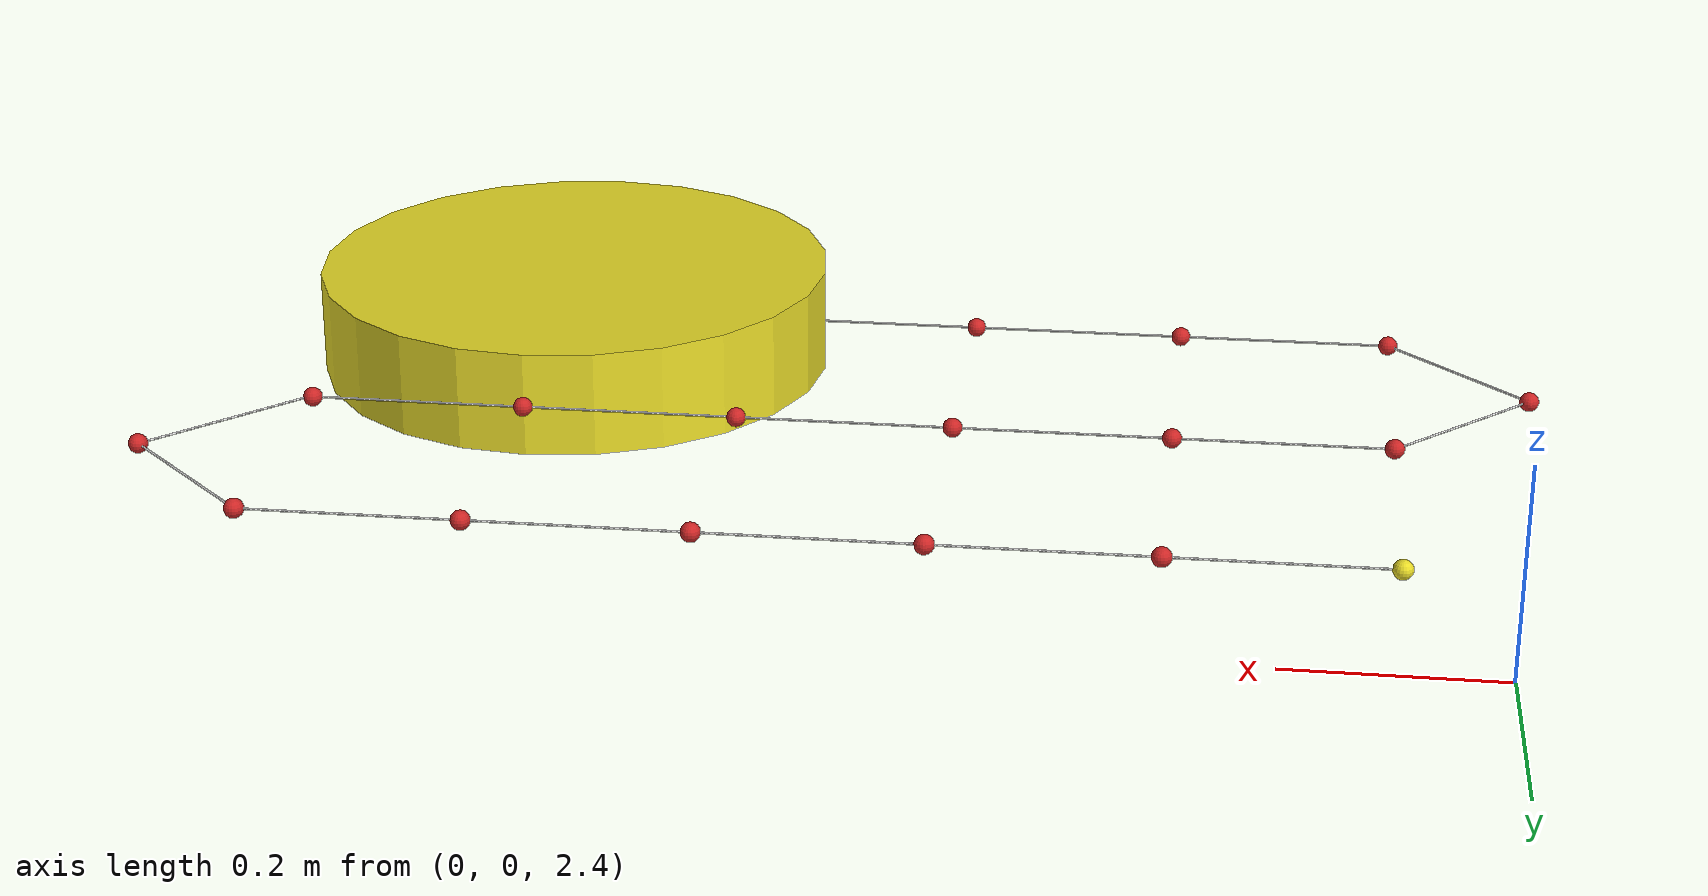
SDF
<?xml version="1.0" ?>
<sdf version="1.5">
  <model name="table_and_tether">
    <link name="tether_connection_link">
      <gravity>false</gravity>
      <pose>0.9 -.508 2.5 0 0 0</pose>
      <visual name="visual">
        <material>
        <script>
          <name>Gazebo/Yellow</name>
          <uri>file://media/materials/scripts/gazebo.material</uri>
        </script>
        </material>
        <geometry>
          <cylinder>
            <radius>0.25</radius>
            <length>0.1</length>
          </cylinder>
        </geometry>
      </visual>
    </link>

    <joint name="joint_table" type="fixed">
      <child>tether_connection_link</child>
      <parent>world</parent>
    </joint>

    <link name="link_00">
      <gravity>true</gravity>
      <pose>0.1 0 2.5 0 0 0</pose>
      <inertial>
        <mass>0.009</mass>
        <pose>0.1 0 0 0 0 0</pose>
        <inertia>
          <ixx>0.01</ixx>
          <ixy>0</ixy>
          <ixz>0</ixz>
          <iyy>0.01</iyy>
          <iyz>0</iyz>
          <izz>0.01</izz>
        </inertia>
      </inertial>
      <visual name="sphere">
        <geometry>
          <sphere>
            <radius>0.009</radius>
          </sphere>
        </geometry>
        <material>
	  <script>
            <name>Gazebo/Yellow</name>
            <uri>file://media/materials/scripts/gazebo.material</uri>
          </script>
        </material>
      </visual>
    </link>
    <link name="link_01">
      <gravity>true</gravity>
      <pose>0.1 0 2.5 0 0 0</pose>
      <inertial>
        <mass>0.009</mass>
        <pose>0.1 0 0 0 0 0</pose>
        <inertia>
          <ixx>0.01</ixx>
          <ixy>0</ixy>
          <ixz>0</ixz>
          <iyy>0.01</iyy>
          <iyz>0</iyz>
          <izz>0.01</izz>
        </inertia>
      </inertial>
      <collision name="collision">
        <pose>0.1 0 0 0 1.570790 0</pose>
        <geometry>
          <cylinder>
            <length>0.2</length>
            <radius>0.001</radius>
          </cylinder>
        </geometry>
        <surface>
          <contact>
            <ode>
              <min_depth>0.00005</min_depth>
            </ode>
          </contact>
          <friction>
            <ode>
              <mu>1.0</mu>
              <mu2>1.0</mu2>
            </ode>
          </friction>
        </surface>
      </collision>
      <visual name="visual">
        <pose>0.1 0 0 0 1.570790 0</pose>
        <geometry>
          <cylinder>
            <length>0.2</length>
            <radius>0.001</radius>
          </cylinder>
        </geometry>
	<material>
	  <script>
            <name>Gazebo/White</name>
            <uri>file://media/materials/scripts/gazebo.material</uri>
          </script>
        </material>
      </visual>
    </link>
    <link name="link_02">
      <gravity>true</gravity>
      <pose>0.3 0 2.5 0 0 0</pose>
      <inertial>
        <mass>0.009</mass>
        <pose>0.1 0 0 0 0 0</pose>
        <inertia>
          <ixx>0.01</ixx>
          <ixy>0</ixy>
          <ixz>0</ixz>
          <iyy>0.01</iyy>
          <iyz>0</iyz>
          <izz>0.01</izz>
        </inertia>
      </inertial>
      <collision name="collision">
        <pose>0.1 0 0 0 1.570790 0</pose>
        <geometry>
          <cylinder>
            <length>0.2</length>
            <radius>0.001</radius>
          </cylinder>
        </geometry>
        <surface>
          <contact>
            <ode>
              <min_depth>0.00005</min_depth>
            </ode>
          </contact>
          <friction>
            <ode>
              <mu>1.0</mu>
              <mu2>1.0</mu2>
            </ode>
          </friction>
        </surface>
      </collision>
      <visual name="visual">
        <pose>0.1 0 0 0 1.570790 0</pose>
        <geometry>
          <cylinder>
            <length>0.2</length>
            <radius>0.001</radius>
          </cylinder>
        </geometry>
	<material>
	  <script>
            <name>Gazebo/White</name>
            <uri>file://media/materials/scripts/gazebo.material</uri>
          </script>
        </material>
      </visual>
      <visual name="sphere">
        <geometry>
          <sphere>
            <radius>0.009</radius>
          </sphere>
        </geometry>
        <material>
	  <script>
            <name>Gazebo/Red</name>
            <uri>file://media/materials/scripts/gazebo.material</uri>
          </script>
        </material>
      </visual>
    </link>
    <link name="link_03">
      <gravity>true</gravity>
      <pose>0.5 0 2.5 0 0 0</pose>
      <inertial>
        <mass>0.009</mass>
        <pose>0.1 0 0 0 0 0</pose>
        <inertia>
          <ixx>0.01</ixx>
          <ixy>0</ixy>
          <ixz>0</ixz>
          <iyy>0.01</iyy>
          <iyz>0</iyz>
          <izz>0.01</izz>
        </inertia>
      </inertial>
      <collision name="collision">
        <pose>0.1 0 0 0 1.570790 0</pose>
        <geometry>
          <cylinder>
            <length>0.2</length>
            <radius>0.001</radius>
          </cylinder>
        </geometry>
        <surface>
          <contact>
            <ode>
              <min_depth>0.00005</min_depth>
            </ode>
          </contact>
          <friction>
            <ode>
              <mu>1.0</mu>
              <mu2>1.0</mu2>
            </ode>
          </friction>
        </surface>
      </collision>
      <visual name="visual">
        <pose>0.1 0 0 0 1.570790 0</pose>
        <geometry>
          <cylinder>
            <length>0.2</length>
            <radius>0.001</radius>
          </cylinder>
        </geometry>
	<material>
	  <script>
            <name>Gazebo/White</name>
            <uri>file://media/materials/scripts/gazebo.material</uri>
          </script>
        </material>
      </visual>
      <visual name="sphere">
        <geometry>
          <sphere>
            <radius>0.009</radius>
          </sphere>
        </geometry>
        <material>
	  <script>
            <name>Gazebo/Red</name>
            <uri>file://media/materials/scripts/gazebo.material</uri>
          </script>
        </material>
      </visual>
    </link>
    <link name="link_04">
      <gravity>true</gravity>
      <pose>0.7 0 2.5 0 0 0</pose>
      <inertial>
        <mass>0.009</mass>
        <pose>0.1 0 0 0 0 0</pose>
        <inertia>
          <ixx>0.01</ixx>
          <ixy>0</ixy>
          <ixz>0</ixz>
          <iyy>0.01</iyy>
          <iyz>0</iyz>
          <izz>0.01</izz>
        </inertia>
      </inertial>
      <collision name="collision">
        <pose>0.1 0 0 0 1.570790 0</pose>
        <geometry>
          <cylinder>
            <length>0.2</length>
            <radius>0.001</radius>
          </cylinder>
        </geometry>
        <surface>
          <contact>
            <ode>
              <min_depth>0.00005</min_depth>
            </ode>
          </contact>
          <friction>
            <ode>
              <mu>1.0</mu>
              <mu2>1.0</mu2>
            </ode>
          </friction>
        </surface>
      </collision>
      <visual name="visual">
        <pose>0.1 0 0 0 1.570790 0</pose>
        <geometry>
          <cylinder>
            <length>0.2</length>
            <radius>0.001</radius>
          </cylinder>
        </geometry>
	<material>
	  <script>
            <name>Gazebo/White</name>
            <uri>file://media/materials/scripts/gazebo.material</uri>
          </script>
        </material>
      </visual>
      <visual name="sphere">
        <geometry>
          <sphere>
            <radius>0.009</radius>
          </sphere>
        </geometry>
        <material>
	  <script>
            <name>Gazebo/Red</name>
            <uri>file://media/materials/scripts/gazebo.material</uri>
          </script>
        </material>
      </visual>
    </link>
    <link name="link_05">
      <gravity>true</gravity>
      <pose>0.9 0 2.5 0 0 0</pose>
      <inertial>
        <mass>0.009</mass>
        <pose>0.1 0 0 0 0 0</pose>
        <inertia>
          <ixx>0.01</ixx>
          <ixy>0</ixy>
          <ixz>0</ixz>
          <iyy>0.01</iyy>
          <iyz>0</iyz>
          <izz>0.01</izz>
        </inertia>
      </inertial>
      <collision name="collision">
        <pose>0.1 0 0 0 1.570790 0</pose>
        <geometry>
          <cylinder>
            <length>0.2</length>
            <radius>0.001</radius>
          </cylinder>
        </geometry>
        <surface>
          <contact>
            <ode>
              <min_depth>0.00005</min_depth>
            </ode>
          </contact>
          <friction>
            <ode>
              <mu>1.0</mu>
              <mu2>1.0</mu2>
            </ode>
          </friction>
        </surface>
      </collision>
      <visual name="visual">
        <pose>0.1 0 0 0 1.570790 0</pose>
        <geometry>
          <cylinder>
            <length>0.2</length>
            <radius>0.001</radius>
          </cylinder>
        </geometry>
	<material>
	  <script>
            <name>Gazebo/White</name>
            <uri>file://media/materials/scripts/gazebo.material</uri>
          </script>
        </material>
      </visual>
      <visual name="sphere">
        <geometry>
          <sphere>
            <radius>0.009</radius>
          </sphere>
        </geometry>
        <material>
	  <script>
            <name>Gazebo/Red</name>
            <uri>file://media/materials/scripts/gazebo.material</uri>
          </script>
        </material>
      </visual>
    </link>
    <link name="link_06">
      <gravity>true</gravity>
      <pose>1.1 0 2.5 0 0 -.785</pose>
      <inertial>
        <mass>0.009</mass>
        <pose>0.0875 0 0 0 0 0</pose>
        <inertia>
          <ixx>0.01</ixx>
          <ixy>0</ixy>
          <ixz>0</ixz>
          <iyy>0.01</iyy>
          <iyz>0</iyz>
          <izz>0.01</izz>
        </inertia>
      </inertial>
      <collision name="collision">
        <pose>0.0875 0 0 0 1.570790 0</pose>
        <geometry>
          <cylinder>
            <length>0.175</length>
            <radius>0.001</radius>
          </cylinder>
        </geometry>
        <surface>
          <contact>
            <ode>
              <min_depth>0.00005</min_depth>
            </ode>
          </contact>
          <friction>
            <ode>
              <mu>1.0</mu>
              <mu2>1.0</mu2>
            </ode>
          </friction>
        </surface>
      </collision>
      <visual name="visual">
        <pose>0.0875 0 0 0 1.570790 0</pose>
        <geometry>
          <cylinder>
            <length>0.175</length>
            <radius>0.001</radius>
          </cylinder>
        </geometry>
	<material>
	  <script>
            <name>Gazebo/White</name>
            <uri>file://media/materials/scripts/gazebo.material</uri>
          </script>
        </material>
      </visual>
      <visual name="sphere">
        <geometry>
          <sphere>
            <radius>0.009</radius>
          </sphere>
        </geometry>
        <material>
	  <script>
            <name>Gazebo/Red</name>
            <uri>file://media/materials/scripts/gazebo.material</uri>
          </script>
        </material>
      </visual>
    </link>
    <link name="link_07">
      <gravity>true</gravity>
      <pose>1.227 -.127 2.5 0 0 -2.3415</pose>
      <inertial>
        <mass>0.009</mass>
        <pose>0.0875 0 0 0 0 0</pose>
        <inertia>
          <ixx>0.01</ixx>
          <ixy>0</ixy>
          <ixz>0</ixz>
          <iyy>0.01</iyy>
          <iyz>0</iyz>
          <izz>0.01</izz>
        </inertia>
      </inertial>
      <collision name="collision">
        <pose>0.0875 0 0 0 1.570790 0</pose>
        <geometry>
          <cylinder>
            <length>0.175</length>
            <radius>0.001</radius>
          </cylinder>
        </geometry>
        <surface>
          <contact>
            <ode>
              <min_depth>0.00005</min_depth>
            </ode>
          </contact>
          <friction>
            <ode>
              <mu>1.0</mu>
              <mu2>1.0</mu2>
            </ode>
          </friction>
        </surface>
      </collision>
      <visual name="visual">
        <pose>0.0875 0 0 0 1.570790 0</pose>
        <geometry>
          <cylinder>
            <length>0.175</length>
            <radius>0.001</radius>
          </cylinder>
        </geometry>
	<material>
	  <script>
            <name>Gazebo/White</name>
            <uri>file://media/materials/scripts/gazebo.material</uri>
          </script>
        </material>
      </visual>
      <visual name="sphere">
        <geometry>
          <sphere>
            <radius>0.009</radius>
          </sphere>
        </geometry>
        <material>
	  <script>
            <name>Gazebo/Red</name>
            <uri>file://media/materials/scripts/gazebo.material</uri>
          </script>
        </material>
      </visual>
    </link>
    <link name="link_08">
      <gravity>true</gravity>
      <pose>1.1 -.254 2.5 0 0 -3.1415</pose>
      <inertial>
        <mass>0.009</mass>
        <pose>0.1 0 0 0 0 0</pose>
        <inertia>
          <ixx>0.01</ixx>
          <ixy>0</ixy>
          <ixz>0</ixz>
          <iyy>0.01</iyy>
          <iyz>0</iyz>
          <izz>0.01</izz>
        </inertia>
      </inertial>
      <collision name="collision">
        <pose>0.1 0 0 0 1.570790 0</pose>
        <geometry>
          <cylinder>
            <length>0.2</length>
            <radius>0.001</radius>
          </cylinder>
        </geometry>
        <surface>
          <contact>
            <ode>
              <min_depth>0.00005</min_depth>
            </ode>
          </contact>
          <friction>
            <ode>
              <mu>1.0</mu>
              <mu2>1.0</mu2>
            </ode>
          </friction>
        </surface>
      </collision>
      <visual name="visual">
        <pose>0.1 0 0 0 1.570790 0</pose>
        <geometry>
          <cylinder>
            <length>0.2</length>
            <radius>0.001</radius>
          </cylinder>
        </geometry>
	<material>
	  <script>
            <name>Gazebo/White</name>
            <uri>file://media/materials/scripts/gazebo.material</uri>
          </script>
        </material>
      </visual>
      <visual name="sphere">
        <geometry>
          <sphere>
            <radius>0.009</radius>
          </sphere>
        </geometry>
        <material>
	  <script>
            <name>Gazebo/Red</name>
            <uri>file://media/materials/scripts/gazebo.material</uri>
          </script>
        </material>
      </visual>
    </link>
    <link name="link_09">
      <gravity>true</gravity>
      <pose>0.9 -.254 2.5 0 0 -3.1415</pose>
      <inertial>
        <mass>0.009</mass>
        <pose>0.1 0 0 0 0 0</pose>
        <inertia>
          <ixx>0.01</ixx>
          <ixy>0</ixy>
          <ixz>0</ixz>
          <iyy>0.01</iyy>
          <iyz>0</iyz>
          <izz>0.01</izz>
        </inertia>
      </inertial>
      <collision name="collision">
        <pose>0.1 0 0 0 1.570790 0</pose>
        <geometry>
          <cylinder>
            <length>0.2</length>
            <radius>0.001</radius>
          </cylinder>
        </geometry>
        <surface>
          <contact>
            <ode>
              <min_depth>0.00005</min_depth>
            </ode>
          </contact>
          <friction>
            <ode>
              <mu>1.0</mu>
              <mu2>1.0</mu2>
            </ode>
          </friction>
        </surface>
      </collision>
      <visual name="visual">
        <pose>0.1 0 0 0 1.570790 0</pose>
        <geometry>
          <cylinder>
            <length>0.2</length>
            <radius>0.001</radius>
          </cylinder>
        </geometry>
	<material>
	  <script>
            <name>Gazebo/White</name>
            <uri>file://media/materials/scripts/gazebo.material</uri>
          </script>
        </material>
      </visual>
      <visual name="sphere">
        <geometry>
          <sphere>
            <radius>0.009</radius>
          </sphere>
        </geometry>
        <material>
	  <script>
            <name>Gazebo/Red</name>
            <uri>file://media/materials/scripts/gazebo.material</uri>
          </script>
        </material>
      </visual>
    </link>
    <link name="link_10">
      <gravity>true</gravity>
      <pose>0.7 -.254 2.5 0 0 -3.1415</pose>
      <inertial>
        <mass>0.009</mass>
        <pose>0.1 0 0 0 0 0</pose>
        <inertia>
          <ixx>0.01</ixx>
          <ixy>0</ixy>
          <ixz>0</ixz>
          <iyy>0.01</iyy>
          <iyz>0</iyz>
          <izz>0.01</izz>
        </inertia>
      </inertial>
      <collision name="collision">
        <pose>0.1 0 0 0 1.570790 0</pose>
        <geometry>
          <cylinder>
            <length>0.2</length>
            <radius>0.001</radius>
          </cylinder>
        </geometry>
        <surface>
          <contact>
            <ode>
              <min_depth>0.00005</min_depth>
            </ode>
          </contact>
          <friction>
            <ode>
              <mu>1.0</mu>
              <mu2>1.0</mu2>
            </ode>
          </friction>
        </surface>
      </collision>
      <visual name="visual">
        <pose>0.1 0 0 0 1.570790 0</pose>
        <geometry>
          <cylinder>
            <length>0.2</length>
            <radius>0.001</radius>
          </cylinder>
        </geometry>
	<material>
	  <script>
            <name>Gazebo/White</name>
            <uri>file://media/materials/scripts/gazebo.material</uri>
          </script>
        </material>
      </visual>
      <visual name="sphere">
        <geometry>
          <sphere>
            <radius>0.009</radius>
          </sphere>
        </geometry>
        <material>
	  <script>
            <name>Gazebo/Red</name>
            <uri>file://media/materials/scripts/gazebo.material</uri>
          </script>
        </material>
      </visual>
    </link>
    <link name="link_11">
      <gravity>true</gravity>
      <pose>0.5 -.254 2.5 0 0 -3.1415</pose>
      <inertial>
        <mass>0.009</mass>
        <pose>0.1 0 0 0 0 0</pose>
        <inertia>
          <ixx>0.01</ixx>
          <ixy>0</ixy>
          <ixz>0</ixz>
          <iyy>0.01</iyy>
          <iyz>0</iyz>
          <izz>0.01</izz>
        </inertia>
      </inertial>
      <collision name="collision">
        <pose>0.1 0 0 0 1.570790 0</pose>
        <geometry>
          <cylinder>
            <length>0.2</length>
            <radius>0.001</radius>
          </cylinder>
        </geometry>
        <surface>
          <contact>
            <ode>
              <min_depth>0.00005</min_depth>
            </ode>
          </contact>
          <friction>
            <ode>
              <mu>1.0</mu>
              <mu2>1.0</mu2>
            </ode>
          </friction>
        </surface>
      </collision>
      <visual name="visual">
        <pose>0.1 0 0 0 1.570790 0</pose>
        <geometry>
          <cylinder>
            <length>0.2</length>
            <radius>0.001</radius>
          </cylinder>
        </geometry>
	<material>
	  <script>
            <name>Gazebo/White</name>
            <uri>file://media/materials/scripts/gazebo.material</uri>
          </script>
        </material>
      </visual>
      <visual name="sphere">
        <geometry>
          <sphere>
            <radius>0.009</radius>
          </sphere>
        </geometry>
        <material>
	  <script>
            <name>Gazebo/Red</name>
            <uri>file://media/materials/scripts/gazebo.material</uri>
          </script>
        </material>
      </visual>
    </link>
    <link name="link_12">
      <gravity>true</gravity>
      <pose>0.3 -.254 2.5 0 0 -3.1415</pose>
      <inertial>
        <mass>0.009</mass>
        <pose>0.1 0 0 0 0 0</pose>
        <inertia>
          <ixx>0.01</ixx>
          <ixy>0</ixy>
          <ixz>0</ixz>
          <iyy>0.01</iyy>
          <iyz>0</iyz>
          <izz>0.01</izz>
        </inertia>
      </inertial>
      <collision name="collision">
        <pose>0.1 0 0 0 1.570790 0</pose>
        <geometry>
          <cylinder>
            <length>0.2</length>
            <radius>0.001</radius>
          </cylinder>
        </geometry>
        <surface>
          <contact>
            <ode>
              <min_depth>0.00005</min_depth>
            </ode>
          </contact>
          <friction>
            <ode>
              <mu>1.0</mu>
              <mu2>1.0</mu2>
            </ode>
          </friction>
        </surface>
      </collision>
      <visual name="visual">
        <pose>0.1 0 0 0 1.570790 0</pose>
        <geometry>
          <cylinder>
            <length>0.2</length>
            <radius>0.001</radius>
          </cylinder>
        </geometry>
	<material>
	  <script>
            <name>Gazebo/White</name>
            <uri>file://media/materials/scripts/gazebo.material</uri>
          </script>
        </material>
      </visual>
      <visual name="sphere">
        <geometry>
          <sphere>
            <radius>0.009</radius>
          </sphere>
        </geometry>
        <material>
	  <script>
            <name>Gazebo/Red</name>
            <uri>file://media/materials/scripts/gazebo.material</uri>
          </script>
        </material>
      </visual>
    </link>
    <link name="link_13">
      <gravity>true</gravity>
      <pose>0.1 -.254 2.5 0 0 -2.356</pose>
      <inertial>
        <mass>0.009</mass>
        <pose>0.0875 0 0 0 0 0</pose>
        <inertia>
          <ixx>0.01</ixx>
          <ixy>0</ixy>
          <ixz>0</ixz>
          <iyy>0.01</iyy>
          <iyz>0</iyz>
          <izz>0.01</izz>
        </inertia>
      </inertial>
      <collision name="collision">
        <pose>0.0875 0 0 0 1.570790 0</pose>
        <geometry>
          <cylinder>
            <length>0.175</length>
            <radius>0.001</radius>
          </cylinder>
        </geometry>
        <surface>
          <contact>
            <ode>
              <min_depth>0.00005</min_depth>
            </ode>
          </contact>
          <friction>
            <ode>
              <mu>1.0</mu>
              <mu2>1.0</mu2>
            </ode>
          </friction>
        </surface>
      </collision>
      <visual name="visual">
        <pose>0.0875 0 0 0 1.570790 0</pose>
        <geometry>
          <cylinder>
            <length>0.175</length>
            <radius>0.001</radius>
          </cylinder>
        </geometry>
	<material>
	  <script>
            <name>Gazebo/White</name>
            <uri>file://media/materials/scripts/gazebo.material</uri>
          </script>
        </material>
      </visual>
      <visual name="sphere">
        <geometry>
          <sphere>
            <radius>0.009</radius>
          </sphere>
        </geometry>
        <material>
	  <script>
            <name>Gazebo/Red</name>
            <uri>file://media/materials/scripts/gazebo.material</uri>
          </script>
        </material>
      </visual>
    </link>
    <link name="link_14">
      <gravity>true</gravity>
      <pose>-0.027 -.381 2.5 0 0 -.785</pose>
      <inertial>
        <mass>0.009</mass>
        <pose>0.0875 0 0 0 0 0</pose>
        <inertia>
          <ixx>0.01</ixx>
          <ixy>0</ixy>
          <ixz>0</ixz>
          <iyy>0.01</iyy>
          <iyz>0</iyz>
          <izz>0.01</izz>
        </inertia>
      </inertial>
      <collision name="collision">
        <pose>0.0875 0 0 0 1.570790 0</pose>
        <geometry>
          <cylinder>
            <length>0.175</length>
            <radius>0.001</radius>
          </cylinder>
        </geometry>
        <surface>
          <contact>
            <ode>
              <min_depth>0.00005</min_depth>
            </ode>
          </contact>
          <friction>
            <ode>
              <mu>1.0</mu>
              <mu2>1.0</mu2>
            </ode>
          </friction>
        </surface>
      </collision>
      <visual name="visual">
        <pose>0.0875 0 0 0 1.570790 0</pose>
        <geometry>
          <cylinder>
            <length>0.175</length>
            <radius>0.001</radius>
          </cylinder>
        </geometry>
	<material>
	  <script>
            <name>Gazebo/White</name>
            <uri>file://media/materials/scripts/gazebo.material</uri>
          </script>
        </material>
      </visual>
      <visual name="sphere">
        <geometry>
          <sphere>
            <radius>0.009</radius>
          </sphere>
        </geometry>
        <material>
	  <script>
            <name>Gazebo/Red</name>
            <uri>file://media/materials/scripts/gazebo.material</uri>
          </script>
        </material>
      </visual>
    </link>
    <link name="link_15">
      <gravity>true</gravity>
      <pose>0.1 -.508 2.5 0 0 0</pose>
      <inertial>
        <mass>0.009</mass>
        <pose>0.1 0 0 0 0 0</pose>
        <inertia>
          <ixx>0.01</ixx>
          <ixy>0</ixy>
          <ixz>0</ixz>
          <iyy>0.01</iyy>
          <iyz>0</iyz>
          <izz>0.01</izz>
        </inertia>
      </inertial>
      <collision name="collision">
        <pose>0.1 0 0 0 1.570790 0</pose>
        <geometry>
          <cylinder>
            <length>0.2</length>
            <radius>0.001</radius>
          </cylinder>
        </geometry>
        <surface>
          <contact>
            <ode>
              <min_depth>0.00005</min_depth>
            </ode>
          </contact>
          <friction>
            <ode>
              <mu>1.0</mu>
              <mu2>1.0</mu2>
            </ode>
          </friction>
        </surface>
      </collision>
      <visual name="visual">
        <pose>0.1 0 0 0 1.570790 0</pose>
        <geometry>
          <cylinder>
            <length>0.2</length>
            <radius>0.001</radius>
          </cylinder>
        </geometry>
	<material>
	  <script>
            <name>Gazebo/White</name>
            <uri>file://media/materials/scripts/gazebo.material</uri>
          </script>
        </material>
      </visual>
      <visual name="sphere">
        <geometry>
          <sphere>
            <radius>0.009</radius>
          </sphere>
        </geometry>
        <material>
	  <script>
            <name>Gazebo/Red</name>
            <uri>file://media/materials/scripts/gazebo.material</uri>
          </script>
        </material>
      </visual>
    </link>
    <link name="link_16">
      <gravity>true</gravity>
      <pose>0.3 -.508 2.5 0 0 0</pose>
      <inertial>
        <mass>0.009</mass>
        <pose>0.1 0 0 0 0 0</pose>
        <inertia>
          <ixx>0.01</ixx>
          <ixy>0</ixy>
          <ixz>0</ixz>
          <iyy>0.01</iyy>
          <iyz>0</iyz>
          <izz>0.01</izz>
        </inertia>
      </inertial>
      <collision name="collision">
        <pose>0.1 0 0 0 1.570790 0</pose>
        <geometry>
          <cylinder>
            <length>0.2</length>
            <radius>0.001</radius>
          </cylinder>
        </geometry>
        <surface>
          <contact>
            <ode>
              <min_depth>0.00005</min_depth>
            </ode>
          </contact>
          <friction>
            <ode>
              <mu>1.0</mu>
              <mu2>1.0</mu2>
            </ode>
          </friction>
        </surface>
      </collision>
      <visual name="visual">
        <pose>0.1 0 0 0 1.570790 0</pose>
        <geometry>
          <cylinder>
            <length>0.2</length>
            <radius>0.001</radius>
          </cylinder>
        </geometry>
	<material>
	  <script>
            <name>Gazebo/White</name>
            <uri>file://media/materials/scripts/gazebo.material</uri>
          </script>
        </material>
      </visual>
      <visual name="sphere">
        <geometry>
          <sphere>
            <radius>0.009</radius>
          </sphere>
        </geometry>
        <material>
	  <script>
            <name>Gazebo/Red</name>
            <uri>file://media/materials/scripts/gazebo.material</uri>
          </script>
        </material>
      </visual>
    </link>
    <link name="link_17">
      <gravity>true</gravity>
      <pose>0.5 -.508 2.5 0 0 0</pose>
      <inertial>
        <mass>0.009</mass>
        <pose>0.1 0 0 0 0 0</pose>
        <inertia>
          <ixx>0.01</ixx>
          <ixy>0</ixy>
          <ixz>0</ixz>
          <iyy>0.01</iyy>
          <iyz>0</iyz>
          <izz>0.01</izz>
        </inertia>
      </inertial>
      <collision name="collision">
        <pose>0.1 0 0 0 1.570790 0</pose>
        <geometry>
          <cylinder>
            <length>0.2</length>
            <radius>0.001</radius>
          </cylinder>
        </geometry>
        <surface>
          <contact>
            <ode>
              <min_depth>0.00005</min_depth>
            </ode>
          </contact>
          <friction>
            <ode>
              <mu>1.0</mu>
              <mu2>1.0</mu2>
            </ode>
          </friction>
        </surface>
      </collision>
      <visual name="visual">
        <pose>0.1 0 0 0 1.570790 0</pose>
        <geometry>
          <cylinder>
            <length>0.2</length>
            <radius>0.001</radius>
          </cylinder>
        </geometry>
	<material>
	  <script>
            <name>Gazebo/White</name>
            <uri>file://media/materials/scripts/gazebo.material</uri>
          </script>
        </material>
      </visual>
      <visual name="sphere">
        <geometry>
          <sphere>
            <radius>0.009</radius>
          </sphere>
        </geometry>
        <material>
	  <script>
            <name>Gazebo/Red</name>
            <uri>file://media/materials/scripts/gazebo.material</uri>
          </script>
        </material>
      </visual>
    </link>
    <link name="link_18">
      <gravity>true</gravity>
      <pose>0.7 -.508 2.5 0 0 0</pose>
      <inertial>
        <mass>0.009</mass>
        <pose>0.1 0 0 0 0 0</pose>
        <inertia>
          <ixx>0.01</ixx>
          <ixy>0</ixy>
          <ixz>0</ixz>
          <iyy>0.01</iyy>
          <iyz>0</iyz>
          <izz>0.01</izz>
        </inertia>
      </inertial>
      <collision name="collision">
        <pose>0.1 0 0 0 1.570790 0</pose>
        <geometry>
          <cylinder>
            <length>0.2</length>
            <radius>0.001</radius>
          </cylinder>
        </geometry>
        <surface>
          <contact>
            <ode>
              <min_depth>0.00005</min_depth>
            </ode>
          </contact>
          <friction>
            <ode>
              <mu>1.0</mu>
              <mu2>1.0</mu2>
            </ode>
          </friction>
        </surface>
      </collision>
      <visual name="visual">
        <pose>0.1 0 0 0 1.570790 0</pose>
        <geometry>
          <cylinder>
            <length>0.2</length>
            <radius>0.001</radius>
          </cylinder>
        </geometry>
	<material>
	  <script>
            <name>Gazebo/White</name>
            <uri>file://media/materials/scripts/gazebo.material</uri>
          </script>
        </material>
      </visual>
      <visual name="sphere">
        <geometry>
          <sphere>
            <radius>0.009</radius>
          </sphere>
        </geometry>
        <material>
	  <script>
            <name>Gazebo/Red</name>
            <uri>file://media/materials/scripts/gazebo.material</uri>
          </script>
        </material>
      </visual>
    </link>
    <link name="link_19">
      <gravity>true</gravity>
      <pose>0.9 -.508 2.5 0 0 0</pose>
      <inertial>
        <mass>0.009</mass>
        <pose>0.1 0 0 0 0 0</pose>
        <inertia>
          <ixx>0.01</ixx>
          <ixy>0</ixy>
          <ixz>0</ixz>
          <iyy>0.01</iyy>
          <iyz>0</iyz>
          <izz>0.01</izz>
        </inertia>
      </inertial>
      <collision name="collision">
        <pose>0.1 0 0 0 1.570790 0</pose>
        <geometry>
          <cylinder>
            <length>0.2</length>
            <radius>0.001</radius>
          </cylinder>
        </geometry>
        <surface>
          <contact>
            <ode>
              <min_depth>0.00005</min_depth>
            </ode>
          </contact>
          <friction>
            <ode>
              <mu>1.0</mu>
              <mu2>1.0</mu2>
            </ode>
          </friction>
        </surface>
      </collision>
      <visual name="sphere">
        <geometry>
          <sphere>
            <radius>0.009</radius>
          </sphere>
        </geometry>
        <material>
	  <script>
            <name>Gazebo/Red</name>
            <uri>file://media/materials/scripts/gazebo.material</uri>
          </script>
        </material>
      </visual>
    </link>
    <joint name="joint_01" type="universal">
      <child>link_01</child>
      <parent>link_00</parent>
      <axis>
        <xyz>0 1 0</xyz>
        <limit>
          <lower>-1.57</lower>
          <upper>1.57</upper>
        </limit>
        <dynamics>
          <damping>0.1</damping>
          <friction>0.0</friction>
          <spring_stiffness>0.05</spring_stiffness>
          <spring_reference>0.0</spring_reference>
        </dynamics>
        <use_parent_model_frame>true</use_parent_model_frame>
      </axis>
      <axis2>
        <xyz>0 0 1</xyz>
        <limit>
          <lower>-1.57</lower>
          <upper>1.57</upper>
        </limit>
        <dynamics>
          <damping>0.1</damping>
          <friction>0.0</friction>
          <spring_stiffness>0.05</spring_stiffness>
          <spring_reference>0.0</spring_reference>
        </dynamics>
        <use_parent_model_frame>true</use_parent_model_frame>
      </axis2>
      <physics>
        <ode>
          <cfm_damping>1</cfm_damping>
        </ode>
      </physics>
    </joint>
    <joint name="joint_02" type="universal">
      <child>link_02</child>
      <parent>link_01</parent>
      <axis>
        <xyz>0 1 0</xyz>
        <limit>
          <lower>-1.57</lower>
          <upper>1.57</upper>
        </limit>
        <dynamics>
          <damping>0.1</damping>
          <friction>0.0</friction>
          <spring_stiffness>0.05</spring_stiffness>
          <spring_reference>0.0</spring_reference>
        </dynamics>
        <use_parent_model_frame>true</use_parent_model_frame>
      </axis>
      <axis2>
        <xyz>0 0 1</xyz>
        <limit>
          <lower>-1.57</lower>
          <upper>1.57</upper>
        </limit>
        <dynamics>
          <damping>0.1</damping>
          <friction>0.0</friction>
          <spring_stiffness>0.05</spring_stiffness>
          <spring_reference>0.0</spring_reference>
        </dynamics>
        <use_parent_model_frame>true</use_parent_model_frame>
      </axis2>
      <physics>
        <ode>
          <cfm_damping>1</cfm_damping>
        </ode>
      </physics>
    </joint>
    <joint name="joint_03" type="universal">
      <child>link_03</child>
      <parent>link_02</parent>
      <axis>
        <xyz>0 1 0</xyz>
        <limit>
          <lower>-1.57</lower>
          <upper>1.57</upper>
        </limit>
        <dynamics>
          <damping>0.1</damping>
          <friction>0.0</friction>
          <spring_stiffness>0.05</spring_stiffness>
          <spring_reference>0.0</spring_reference>
        </dynamics>
        <use_parent_model_frame>true</use_parent_model_frame>
      </axis>
      <axis2>
        <xyz>0 0 1</xyz>
        <limit>
          <lower>-1.57</lower>
          <upper>1.57</upper>
        </limit>
        <dynamics>
          <damping>0.1</damping>
          <friction>0.0</friction>
          <spring_stiffness>0.05</spring_stiffness>
          <spring_reference>0.0</spring_reference>
        </dynamics>
        <use_parent_model_frame>true</use_parent_model_frame>
      </axis2>
      <physics>
        <ode>
          <cfm_damping>1</cfm_damping>
        </ode>
      </physics>
    </joint>
    <joint name="joint_04" type="universal">
      <child>link_04</child>
      <parent>link_03</parent>
      <axis>
        <xyz>0 1 0</xyz>
        <limit>
          <lower>-1.57</lower>
          <upper>1.57</upper>
        </limit>
        <dynamics>
          <damping>0.1</damping>
          <friction>0.0</friction>
          <spring_stiffness>0.05</spring_stiffness>
          <spring_reference>0.0</spring_reference>
        </dynamics>
        <use_parent_model_frame>true</use_parent_model_frame>
      </axis>
      <axis2>
        <xyz>0 0 1</xyz>
        <limit>
          <lower>-1.57</lower>
          <upper>1.57</upper>
        </limit>
        <dynamics>
          <damping>0.1</damping>
          <friction>0.0</friction>
          <spring_stiffness>0.05</spring_stiffness>
          <spring_reference>0.0</spring_reference>
        </dynamics>
        <use_parent_model_frame>true</use_parent_model_frame>
      </axis2>
      <physics>
        <ode>
          <cfm_damping>1</cfm_damping>
        </ode>
      </physics>
    </joint>
    <joint name="joint_05" type="universal">
      <child>link_05</child>
      <parent>link_04</parent>
      <axis>
        <xyz>0 1 0</xyz>
        <limit>
          <lower>-1.57</lower>
          <upper>1.57</upper>
        </limit>
        <dynamics>
          <damping>0.1</damping>
          <friction>0.0</friction>
          <spring_stiffness>0.05</spring_stiffness>
          <spring_reference>0.0</spring_reference>
        </dynamics>
        <use_parent_model_frame>true</use_parent_model_frame>
      </axis>
      <axis2>
        <xyz>0 0 1</xyz>
        <limit>
          <lower>-1.57</lower>
          <upper>1.57</upper>
        </limit>
        <dynamics>
          <damping>0.1</damping>
          <friction>0.0</friction>
          <spring_stiffness>0.05</spring_stiffness>
          <spring_reference>0.0</spring_reference>
        </dynamics>
        <use_parent_model_frame>true</use_parent_model_frame>
      </axis2>
      <physics>
        <ode>
          <cfm_damping>1</cfm_damping>
        </ode>
      </physics>
    </joint>
    <joint name="joint_06" type="universal">
      <child>link_06</child>
      <parent>link_05</parent>
      <axis>
        <xyz>0 0 1</xyz>
        <limit>
          <lower>-0.72</lower>
          <upper>2.35</upper>
        </limit>
        <dynamics>
          <damping>0.1</damping>
          <friction>0.0</friction>
          <spring_stiffness>0.05</spring_stiffness>
          <spring_reference>0.0</spring_reference>
        </dynamics>
        <use_parent_model_frame>true</use_parent_model_frame>
      </axis>
      <axis2>
        <xyz>1 1 0</xyz>
        <limit>
          <lower>-1.57</lower>
          <upper>1.57</upper>
        </limit>
        <dynamics>
          <damping>0.1</damping>
          <friction>0.0</friction>
          <spring_stiffness>0.05</spring_stiffness>
          <spring_reference>0.0</spring_reference>
        </dynamics>
        <use_parent_model_frame>true</use_parent_model_frame>
      </axis2>
      <physics>
        <ode>
          <cfm_damping>1</cfm_damping>
        </ode>
      </physics>
    </joint>
    <joint name="joint_07" type="universal">
      <child>link_07</child>
      <parent>link_06</parent>
      <axis>
        <xyz>0 0 1</xyz>
        <limit>
          <lower>-0.0</lower>
          <upper>3.00</upper>
        </limit>
        <dynamics>
          <damping>0.1</damping>
          <friction>0.0</friction>
          <spring_stiffness>0.05</spring_stiffness>
          <spring_reference>0.0</spring_reference>
        </dynamics>
        <use_parent_model_frame>true</use_parent_model_frame>
      </axis>
      <axis2>
        <xyz>-1 1 0</xyz>
        <limit>
          <lower>-1.57</lower>
          <upper>1.57</upper>
        </limit>
        <dynamics>
          <damping>0.1</damping>
          <friction>0.0</friction>
          <spring_stiffness>0.05</spring_stiffness>
          <spring_reference>0.0</spring_reference>
        </dynamics>
        <use_parent_model_frame>true</use_parent_model_frame>
      </axis2>
      <physics>
        <ode>
          <cfm_damping>1</cfm_damping>
        </ode>
      </physics>
    </joint>
    <joint name="joint_08" type="universal">
      <child>link_08</child>
      <parent>link_07</parent>
      <axis>
        <xyz>0 1 0</xyz>
        <limit>
          <lower>-1.57</lower>
          <upper>1.57</upper>
        </limit>
        <dynamics>
          <damping>0.1</damping>
          <friction>0.0</friction>
          <spring_stiffness>0.05</spring_stiffness>
          <spring_reference>0.0</spring_reference>
        </dynamics>
        <use_parent_model_frame>true</use_parent_model_frame>
      </axis>
      <axis2>
        <xyz>0 0 1</xyz>
        <limit>
          <lower>-0.72</lower>
          <upper>2.35</upper>
        </limit>
        <dynamics>
          <damping>0.1</damping>
          <friction>0.0</friction>
          <spring_stiffness>0.05</spring_stiffness>
          <spring_reference>0.0</spring_reference>
        </dynamics>
        <use_parent_model_frame>true</use_parent_model_frame>
      </axis2>
      <physics>
        <ode>
          <cfm_damping>1</cfm_damping>
        </ode>
      </physics>
    </joint>
    <joint name="joint_09" type="universal">
      <child>link_09</child>
      <parent>link_08</parent>
      <axis>
        <xyz>0 1 0</xyz>
        <limit>
          <lower>-1.57</lower>
          <upper>1.57</upper>
        </limit>
        <dynamics>
          <damping>0.1</damping>
          <friction>0.0</friction>
          <spring_stiffness>0.05</spring_stiffness>
          <spring_reference>0.0</spring_reference>
        </dynamics>
        <use_parent_model_frame>true</use_parent_model_frame>
      </axis>
      <axis2>
        <xyz>0 0 1</xyz>
        <limit>
          <lower>-1.57</lower>
          <upper>1.57</upper>
        </limit>
        <dynamics>
          <damping>0.1</damping>
          <friction>0.0</friction>
          <spring_stiffness>0.05</spring_stiffness>
          <spring_reference>0.0</spring_reference>
        </dynamics>
        <use_parent_model_frame>true</use_parent_model_frame>
      </axis2>
      <physics>
        <ode>
          <cfm_damping>1</cfm_damping>
        </ode>
      </physics>
    </joint>
    <joint name="joint_10" type="universal">
      <child>link_10</child>
      <parent>link_09</parent>
      <axis>
        <xyz>0 1 0</xyz>
        <limit>
          <lower>-1.57</lower>
          <upper>1.57</upper>
        </limit>
        <dynamics>
          <damping>0.1</damping>
          <friction>0.0</friction>
          <spring_stiffness>0.05</spring_stiffness>
          <spring_reference>0.0</spring_reference>
        </dynamics>
        <use_parent_model_frame>true</use_parent_model_frame>
      </axis>
      <axis2>
        <xyz>0 0 1</xyz>
        <limit>
          <lower>-1.57</lower>
          <upper>1.57</upper>
        </limit>
        <dynamics>
          <damping>0.1</damping>
          <friction>0.0</friction>
          <spring_stiffness>0.05</spring_stiffness>
          <spring_reference>0.0</spring_reference>
        </dynamics>
        <use_parent_model_frame>true</use_parent_model_frame>
      </axis2>
      <physics>
        <ode>
          <cfm_damping>1</cfm_damping>
        </ode>
      </physics>
    </joint>
    <joint name="joint_11" type="universal">
      <child>link_11</child>
      <parent>link_10</parent>
      <axis>
        <xyz>0 1 0</xyz>
        <limit>
          <lower>-1.57</lower>
          <upper>1.57</upper>
        </limit>
        <dynamics>
          <damping>0.1</damping>
          <friction>0.0</friction>
          <spring_stiffness>0.05</spring_stiffness>
          <spring_reference>0.0</spring_reference>
        </dynamics>
        <use_parent_model_frame>true</use_parent_model_frame>
      </axis>
      <axis2>
        <xyz>0 0 1</xyz>
        <limit>
          <lower>-1.57</lower>
          <upper>1.57</upper>
        </limit>
        <dynamics>
          <damping>0.1</damping>
          <friction>0.0</friction>
          <spring_stiffness>0.05</spring_stiffness>
          <spring_reference>0.0</spring_reference>
        </dynamics>
        <use_parent_model_frame>true</use_parent_model_frame>
      </axis2>
      <physics>
        <ode>
          <cfm_damping>1</cfm_damping>
        </ode>
      </physics>
    </joint>
    <joint name="joint_12" type="universal">
      <child>link_12</child>
      <parent>link_11</parent>
      <axis>
        <xyz>0 1 0</xyz>
        <limit>
          <lower>-1.57</lower>
          <upper>1.57</upper>
        </limit>
        <dynamics>
          <damping>0.1</damping>
          <friction>0.0</friction>
          <spring_stiffness>0.05</spring_stiffness>
          <spring_reference>0.0</spring_reference>
        </dynamics>
        <use_parent_model_frame>true</use_parent_model_frame>
      </axis>
      <axis2>
        <xyz>0 0 1</xyz>
        <limit>
          <lower>-1.57</lower>
          <upper>1.57</upper>
        </limit>
        <dynamics>
          <damping>0.1</damping>
          <friction>0.0</friction>
          <spring_stiffness>0.05</spring_stiffness>
          <spring_reference>0.0</spring_reference>
        </dynamics>
        <use_parent_model_frame>true</use_parent_model_frame>
      </axis2>
      <physics>
        <ode>
          <cfm_damping>1</cfm_damping>
        </ode>
      </physics>
    </joint>
    <joint name="joint_13" type="universal">
      <child>link_13</child>
      <parent>link_12</parent>
      <axis>
        <xyz>0 0 1</xyz>
        <limit>
          <lower>-2.35</lower>
          <upper>0.72</upper>
        </limit>
        <dynamics>
          <damping>0.1</damping>
          <friction>0.0</friction>
          <spring_stiffness>0.05</spring_stiffness>
          <spring_reference>0.0</spring_reference>
        </dynamics>
        <use_parent_model_frame>true</use_parent_model_frame>
      </axis>
      <axis2>
        <xyz>-1 1 0</xyz>
        <limit>
          <lower>-1.57</lower>
          <upper>1.57</upper>
        </limit>
        <dynamics>
          <damping>0.1</damping>
          <friction>0.0</friction>
          <spring_stiffness>0.05</spring_stiffness>
          <spring_reference>0.0</spring_reference>
        </dynamics>
        <use_parent_model_frame>true</use_parent_model_frame>
      </axis2>
      <physics>
        <ode>
          <cfm_damping>1</cfm_damping>
        </ode>
      </physics>
    </joint>
    <joint name="joint_14" type="universal">
      <child>link_14</child>
      <parent>link_13</parent>
      <axis>
        <xyz>0 0 1</xyz>
        <limit>
          <lower>-3.00</lower>
          <upper>0.0</upper>
        </limit>
        <dynamics>
          <damping>0.1</damping>
          <friction>0.0</friction>
          <spring_stiffness>0.05</spring_stiffness>
          <spring_reference>0.0</spring_reference>
        </dynamics>
        <use_parent_model_frame>true</use_parent_model_frame>
      </axis>
      <axis2>
        <xyz>1 1 0</xyz>
        <limit>
          <lower>-1.57</lower>
          <upper>1.57</upper>
        </limit>
        <dynamics>
          <damping>0.1</damping>
          <friction>0.0</friction>
          <spring_stiffness>0.05</spring_stiffness>
          <spring_reference>0.0</spring_reference>
        </dynamics>
        <use_parent_model_frame>true</use_parent_model_frame>
      </axis2>
      <physics>
        <ode>
          <cfm_damping>1</cfm_damping>
        </ode>
      </physics>
    </joint>
    <joint name="joint_15" type="universal">
      <child>link_15</child>
      <parent>link_14</parent>
      <axis>
        <xyz>0 0 1</xyz>
        <limit>
          <lower>-2.35</lower>
          <upper>0.72</upper>
        </limit>
        <dynamics>
          <damping>0.1</damping>
          <friction>0.0</friction>
          <spring_stiffness>0.05</spring_stiffness>
          <spring_reference>0.0</spring_reference>
        </dynamics>
        <use_parent_model_frame>true</use_parent_model_frame>
      </axis>
      <axis2>
        <xyz>0 1 0</xyz>
        <limit>
          <lower>-1.57</lower>
          <upper>1.57</upper>
        </limit>
        <dynamics>
          <damping>0.1</damping>
          <friction>0.0</friction>
          <spring_stiffness>0.05</spring_stiffness>
          <spring_reference>0.0</spring_reference>
        </dynamics>
        <use_parent_model_frame>true</use_parent_model_frame>
      </axis2>
      <physics>
        <ode>
          <cfm_damping>1</cfm_damping>
        </ode>
      </physics>
    </joint>
    <joint name="joint_16" type="universal">
      <child>link_16</child>
      <parent>link_15</parent>
      <axis>
        <xyz>0 1 0</xyz>
        <limit>
          <lower>-1.57</lower>
          <upper>1.57</upper>
        </limit>
        <dynamics>
          <damping>0.1</damping>
          <friction>0.0</friction>
          <spring_stiffness>0.05</spring_stiffness>
          <spring_reference>0.0</spring_reference>
        </dynamics>
        <use_parent_model_frame>true</use_parent_model_frame>
      </axis>
      <axis2>
        <xyz>0 0 1</xyz>
        <limit>
          <lower>-1.57</lower>
          <upper>1.57</upper>
        </limit>
        <dynamics>
          <damping>0.1</damping>
          <friction>0.0</friction>
          <spring_stiffness>0.05</spring_stiffness>
          <spring_reference>0.0</spring_reference>
        </dynamics>
        <use_parent_model_frame>true</use_parent_model_frame>
      </axis2>
      <physics>
        <ode>
          <cfm_damping>1</cfm_damping>
        </ode>
      </physics>
    </joint>
    <joint name="joint_17" type="universal">
      <child>link_17</child>
      <parent>link_16</parent>
      <axis>
        <xyz>0 1 0</xyz>
        <limit>
          <lower>-1.57</lower>
          <upper>1.57</upper>
        </limit>
        <dynamics>
          <damping>0.1</damping>
          <friction>0.0</friction>
          <spring_stiffness>0.05</spring_stiffness>
          <spring_reference>0.0</spring_reference>
        </dynamics>
        <use_parent_model_frame>true</use_parent_model_frame>
      </axis>
      <axis2>
        <xyz>0 0 1</xyz>
        <limit>
          <lower>-1.57</lower>
          <upper>1.57</upper>
        </limit>
        <dynamics>
          <damping>0.1</damping>
          <friction>0.0</friction>
          <spring_stiffness>0.05</spring_stiffness>
          <spring_reference>0.0</spring_reference>
        </dynamics>
        <use_parent_model_frame>true</use_parent_model_frame>
      </axis2>
      <physics>
        <ode>
          <cfm_damping>1</cfm_damping>
        </ode>
      </physics>
    </joint>
    <joint name="joint_18" type="universal">
      <child>link_18</child>
      <parent>link_17</parent>
      <axis>
        <xyz>0 1 0</xyz>
        <limit>
          <lower>-1.57</lower>
          <upper>1.57</upper>
        </limit>
        <dynamics>
          <damping>0.1</damping>
          <friction>0.0</friction>
          <spring_stiffness>0.05</spring_stiffness>
          <spring_reference>0.0</spring_reference>
        </dynamics>
        <use_parent_model_frame>true</use_parent_model_frame>
      </axis>
      <axis2>
        <xyz>0 0 1</xyz>
        <limit>
          <lower>-1.57</lower>
          <upper>1.57</upper>
        </limit>
        <dynamics>
          <damping>0.1</damping>
          <friction>0.0</friction>
          <spring_stiffness>0.05</spring_stiffness>
          <spring_reference>0.0</spring_reference>
        </dynamics>
        <use_parent_model_frame>true</use_parent_model_frame>
      </axis2>
      <physics>
        <ode>
          <cfm_damping>1</cfm_damping>
        </ode>
      </physics>
    </joint>
    <joint name="joint_19" type="universal">
      <child>link_19</child>
      <parent>link_18</parent>
      <axis>
        <xyz>0 1 0</xyz>
        <limit>
          <lower>-1.57</lower>
          <upper>1.57</upper>
        </limit>
        <dynamics>
          <damping>0.1</damping>
          <friction>0.0</friction>
          <spring_stiffness>0.05</spring_stiffness>
          <spring_reference>0.0</spring_reference>
        </dynamics>
        <use_parent_model_frame>true</use_parent_model_frame>
      </axis>
      <axis2>
        <xyz>0 0 1</xyz>
        <limit>
          <lower>-1.57</lower>
          <upper>1.57</upper>
        </limit>
        <dynamics>
          <damping>0.1</damping>
          <friction>0.0</friction>
          <spring_stiffness>0.05</spring_stiffness>
          <spring_reference>0.0</spring_reference>
        </dynamics>
        <use_parent_model_frame>true</use_parent_model_frame>
      </axis2>
      <physics>
        <ode>
          <cfm_damping>1</cfm_damping>
        </ode>
      </physics>
    </joint>
    <joint name="fixed_to_world" type="fixed">
      <child>link_19</child>
      <parent>tether_connection_link</parent>
    </joint>
    <plugin name="link00_drag" filename="libLiftDragPlugin.so">
      <robotNamespace></robotNamespace>
      <a0>0</a0>
      <cla>0</cla>
      <cda>1.2535816618911175</cda>
      <alpha_stall>0</alpha_stall>
      <cda_stall>1.4326647564469914</cda_stall>
      <cp>0 0 0</cp>
      <area>0.0004</area> <!-- 0.002m of diameter x 0.2 element length -->
      <air_density>1.2041</air_density>
      <forward>0 1 0</forward>
      <upward>0 0 1</upward>
      <link_name>link_00</link_name>
    </plugin>
    <plugin name="link01_drag" filename="libLiftDragPlugin.so">
      <robotNamespace></robotNamespace>
      <a0>0</a0>
      <cla>0</cla>
      <cda>1.2535816618911175</cda>
      <alpha_stall>0</alpha_stall>
      <cda_stall>1.4326647564469914</cda_stall>
      <cp>0 0 0</cp>
      <area>0.0004</area> <!-- 0.002m of diameter x 0.2 element length -->
      <air_density>1.2041</air_density>
      <forward>0 1 0</forward>
      <upward>0 0 1</upward>
      <link_name>link_01</link_name>
    </plugin>
    <plugin name="link02_drag" filename="libLiftDragPlugin.so">
      <robotNamespace></robotNamespace>
      <a0>0</a0>
      <cla>0</cla>
      <cda>1.2535816618911175</cda>
      <alpha_stall>0</alpha_stall>
      <cda_stall>1.4326647564469914</cda_stall>
      <cp>0 0 0</cp>
      <area>0.0004</area> <!-- 0.002m of diameter x 0.2 element length -->
      <air_density>1.2041</air_density>
      <forward>0 1 0</forward>
      <upward>0 0 1</upward>
      <link_name>link_02</link_name>
    </plugin>
    <plugin name="link03_drag" filename="libLiftDragPlugin.so">
      <robotNamespace></robotNamespace>
      <a0>0</a0>
      <cla>0</cla>
      <cda>1.2535816618911175</cda>
      <alpha_stall>0</alpha_stall>
      <cda_stall>1.4326647564469914</cda_stall>
      <cp>0 0 0</cp>
      <area>0.0004</area> <!-- 0.002m of diameter x 0.2 element length -->
      <air_density>1.2041</air_density>
      <forward>0 1 0</forward>
      <upward>0 0 1</upward>
      <link_name>link_03</link_name>
    </plugin>
    <plugin name="link04_drag" filename="libLiftDragPlugin.so">
      <robotNamespace></robotNamespace>
      <a0>0</a0>
      <cla>0</cla>
      <cda>1.2535816618911175</cda>
      <alpha_stall>0</alpha_stall>
      <cda_stall>1.4326647564469914</cda_stall>
      <cp>0 0 0</cp>
      <area>0.0004</area> <!-- 0.002m of diameter x 0.2 element length -->
      <air_density>1.2041</air_density>
      <forward>0 1 0</forward>
      <upward>0 0 1</upward>
      <link_name>link_04</link_name>
    </plugin>
    <plugin name="link05_drag" filename="libLiftDragPlugin.so">
      <robotNamespace></robotNamespace>
      <a0>0</a0>
      <cla>0</cla>
      <cda>1.2535816618911175</cda>
      <alpha_stall>0</alpha_stall>
      <cda_stall>1.4326647564469914</cda_stall>
      <cp>0 0 0</cp>
      <area>0.0004</area> <!-- 0.002m of diameter x 0.2 element length -->
      <air_density>1.2041</air_density>
      <forward>0 1 0</forward>
      <upward>0 0 1</upward>
      <link_name>link_05</link_name>
    </plugin>
    <plugin name="link06_drag" filename="libLiftDragPlugin.so">
      <robotNamespace></robotNamespace>
      <a0>0</a0>
      <cla>0</cla>
      <cda>1.2535816618911175</cda>
      <alpha_stall>0</alpha_stall>
      <cda_stall>1.4326647564469914</cda_stall>
      <cp>0 0 0</cp>
      <area>0.0004</area> <!-- 0.002m of diameter x 0.2 element length -->
      <air_density>1.2041</air_density>
      <forward>0 1 0</forward>
      <upward>0 0 1</upward>
      <link_name>link_06</link_name>
    </plugin>
    <plugin name="link07_drag" filename="libLiftDragPlugin.so">
      <robotNamespace></robotNamespace>
      <a0>0</a0>
      <cla>0</cla>
      <cda>1.2535816618911175</cda>
      <alpha_stall>0</alpha_stall>
      <cda_stall>1.4326647564469914</cda_stall>
      <cp>0 0 0</cp>
      <area>0.0004</area> <!-- 0.002m of diameter x 0.2 element length -->
      <air_density>1.2041</air_density>
      <forward>0 1 0</forward>
      <upward>0 0 1</upward>
      <link_name>link_07</link_name>
    </plugin>
    <plugin name="link08_drag" filename="libLiftDragPlugin.so">
      <robotNamespace></robotNamespace>
      <a0>0</a0>
      <cla>0</cla>
      <cda>1.2535816618911175</cda>
      <alpha_stall>0</alpha_stall>
      <cda_stall>1.4326647564469914</cda_stall>
      <cp>0 0 0</cp>
      <area>0.0004</area> <!-- 0.002m of diameter x 0.2 element length -->
      <air_density>1.2041</air_density>
      <forward>0 1 0</forward>
      <upward>0 0 1</upward>
      <link_name>link_08</link_name>
    </plugin>
    <plugin name="link09_drag" filename="libLiftDragPlugin.so">
      <robotNamespace></robotNamespace>
      <a0>0</a0>
      <cla>0</cla>
      <cda>1.2535816618911175</cda>
      <alpha_stall>0</alpha_stall>
      <cda_stall>1.4326647564469914</cda_stall>
      <cp>0 0 0</cp>
      <area>0.0004</area> <!-- 0.002m of diameter x 0.2 element length -->
      <air_density>1.2041</air_density>
      <forward>0 1 0</forward>
      <upward>0 0 1</upward>
      <link_name>link_09</link_name>
    </plugin>
    <plugin name="link10_drag" filename="libLiftDragPlugin.so">
      <robotNamespace></robotNamespace>
      <a0>0</a0>
      <cla>0</cla>
      <cda>1.2535816618911175</cda>
      <alpha_stall>0</alpha_stall>
      <cda_stall>1.4326647564469914</cda_stall>
      <cp>0 0 0</cp>
      <area>0.0004</area> <!-- 0.002m of diameter x 0.2 element length -->
      <air_density>1.2041</air_density>
      <forward>0 1 0</forward>
      <upward>0 0 1</upward>
      <link_name>link_10</link_name>
    </plugin>
    <plugin name="link11_drag" filename="libLiftDragPlugin.so">
      <robotNamespace></robotNamespace>
      <a0>0</a0>
      <cla>0</cla>
      <cda>1.2535816618911175</cda>
      <alpha_stall>0</alpha_stall>
      <cda_stall>1.4326647564469914</cda_stall>
      <cp>0 0 0</cp>
      <area>0.0004</area> <!-- 0.002m of diameter x 0.2 element length -->
      <air_density>1.2041</air_density>
      <forward>0 1 0</forward>
      <upward>0 0 1</upward>
      <link_name>link_11</link_name>
    </plugin>
    <plugin name="link12_drag" filename="libLiftDragPlugin.so">
      <robotNamespace></robotNamespace>
      <a0>0</a0>
      <cla>0</cla>
      <cda>1.2535816618911175</cda>
      <alpha_stall>0</alpha_stall>
      <cda_stall>1.4326647564469914</cda_stall>
      <cp>0 0 0</cp>
      <area>0.0004</area> <!-- 0.002m of diameter x 0.2 element length -->
      <air_density>1.2041</air_density>
      <forward>0 1 0</forward>
      <upward>0 0 1</upward>
      <link_name>link_12</link_name>
    </plugin>
    <plugin name="link13_drag" filename="libLiftDragPlugin.so">
      <robotNamespace></robotNamespace>
      <a0>0</a0>
      <cla>0</cla>
      <cda>1.2535816618911175</cda>
      <alpha_stall>0</alpha_stall>
      <cda_stall>1.4326647564469914</cda_stall>
      <cp>0 0 0</cp>
      <area>0.0004</area> <!-- 0.002m of diameter x 0.2 element length -->
      <air_density>1.2041</air_density>
      <forward>0 1 0</forward>
      <upward>0 0 1</upward>
      <link_name>link_13</link_name>
    </plugin>
    <plugin name="link14_drag" filename="libLiftDragPlugin.so">
      <robotNamespace></robotNamespace>
      <a0>0</a0>
      <cla>0</cla>
      <cda>1.2535816618911175</cda>
      <alpha_stall>0</alpha_stall>
      <cda_stall>1.4326647564469914</cda_stall>
      <cp>0 0 0</cp>
      <area>0.0004</area> <!-- 0.002m of diameter x 0.2 element length -->
      <air_density>1.2041</air_density>
      <forward>0 1 0</forward>
      <upward>0 0 1</upward>
      <link_name>link_14</link_name>
    </plugin>
    <plugin name="link15_drag" filename="libLiftDragPlugin.so">
      <robotNamespace></robotNamespace>
      <a0>0</a0>
      <cla>0</cla>
      <cda>1.2535816618911175</cda>
      <alpha_stall>0</alpha_stall>
      <cda_stall>1.4326647564469914</cda_stall>
      <cp>0 0 0</cp>
      <area>0.0004</area> <!-- 0.002m of diameter x 0.2 element length -->
      <air_density>1.2041</air_density>
      <forward>0 1 0</forward>
      <upward>0 0 1</upward>
      <link_name>link_15</link_name>
    </plugin>
    <plugin name="link16_drag" filename="libLiftDragPlugin.so">
      <robotNamespace></robotNamespace>
      <a0>0</a0>
      <cla>0</cla>
      <cda>1.2535816618911175</cda>
      <alpha_stall>0</alpha_stall>
      <cda_stall>1.4326647564469914</cda_stall>
      <cp>0 0 0</cp>
      <area>0.0004</area> <!-- 0.002m of diameter x 0.2 element length -->
      <air_density>1.2041</air_density>
      <forward>0 1 0</forward>
      <upward>0 0 1</upward>
      <link_name>link_16</link_name>
    </plugin>
    <plugin name="link17_drag" filename="libLiftDragPlugin.so">
      <robotNamespace></robotNamespace>
      <a0>0</a0>
      <cla>0</cla>
      <cda>1.2535816618911175</cda>
      <alpha_stall>0</alpha_stall>
      <cda_stall>1.4326647564469914</cda_stall>
      <cp>0 0 0</cp>
      <area>0.0004</area> <!-- 0.002m of diameter x 0.2 element length -->
      <air_density>1.2041</air_density>
      <forward>0 1 0</forward>
      <upward>0 0 1</upward>
      <link_name>link_17</link_name>
    </plugin>
    <plugin name="link18_drag" filename="libLiftDragPlugin.so">
      <robotNamespace></robotNamespace>
      <a0>0</a0>
      <cla>0</cla>
      <cda>1.2535816618911175</cda>
      <alpha_stall>0</alpha_stall>
      <cda_stall>1.4326647564469914</cda_stall>
      <cp>0 0 0</cp>
      <area>0.0004</area> <!-- 0.002m of diameter x 0.2 element length -->
      <air_density>1.2041</air_density>
      <forward>0 1 0</forward>
      <upward>0 0 1</upward>
      <link_name>link_18</link_name>
    </plugin>
    <plugin name="link19_drag" filename="libLiftDragPlugin.so">
      <robotNamespace></robotNamespace>
      <a0>0</a0>
      <cla>0</cla>
      <cda>1.2535816618911175</cda>
      <alpha_stall>0</alpha_stall>
      <cda_stall>1.4326647564469914</cda_stall>
      <cp>0 0 0</cp>
      <area>0.0004</area> <!-- 0.002m of diameter x 0.2 element length -->
      <air_density>1.2041</air_density>
      <forward>0 1 0</forward>
      <upward>0 0 1</upward>
      <link_name>link_19</link_name>
    </plugin>
  </model>

</sdf>
